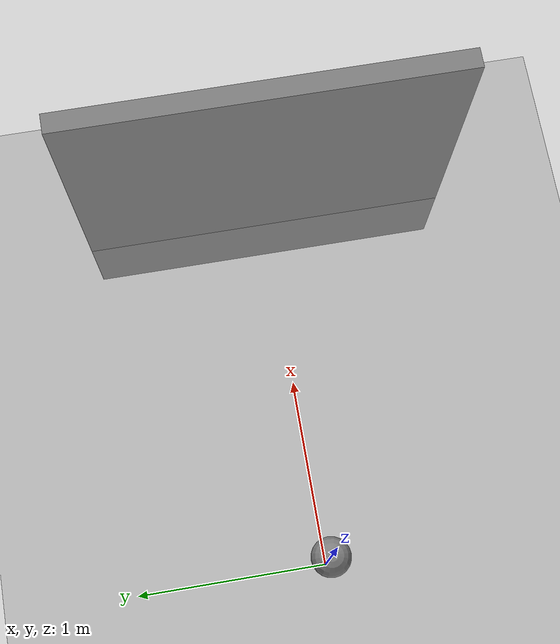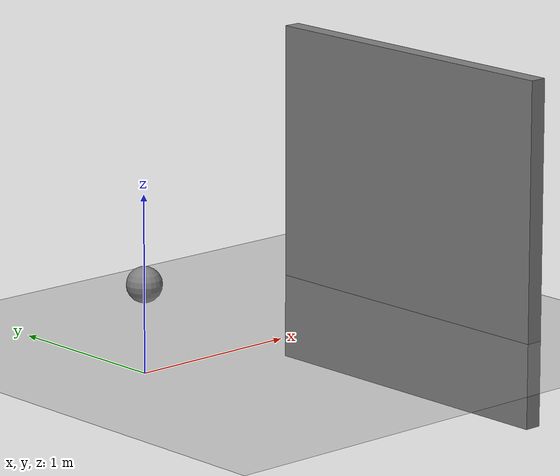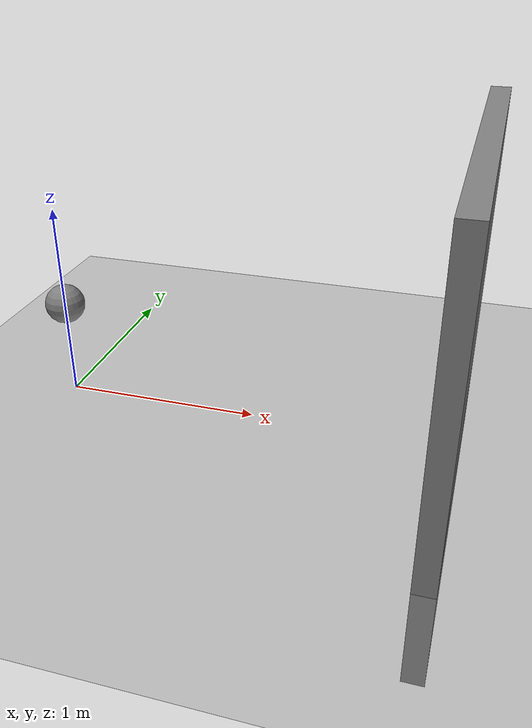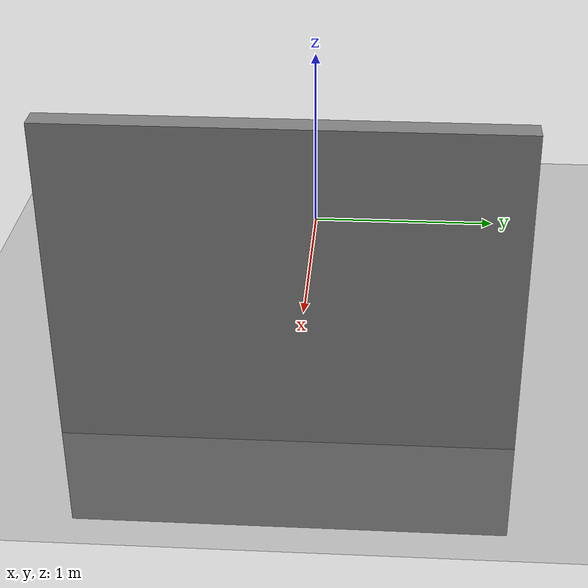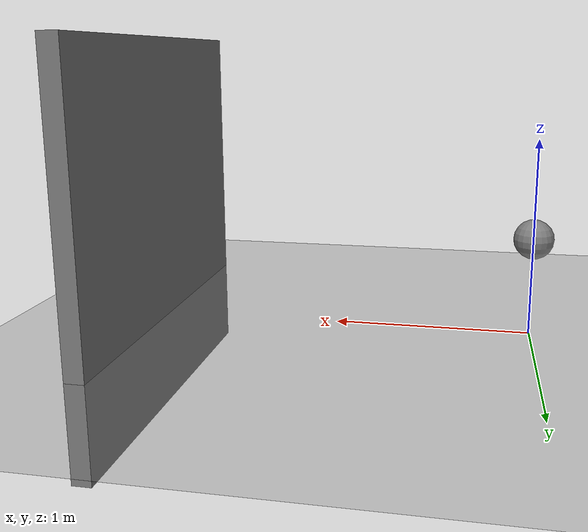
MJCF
<mujoco model="mocap-contact">
  <option gravity="0 0 -9.81" timestep="0.002"/>
  <worldbody>
    <geom type="plane" size="5 5 0.1"/>
    <body name="wall" mocap="true" pos="2 0 0.5">
      <geom type="box" size="0.05 1 1" mass="10.0"/>
    </body>
    <body name="ball" pos="0 0 0.5">
      <freejoint name="ball_free"/>
      <geom type="sphere" size="0.1" mass="1.0"/>
    </body>
  </worldbody>
</mujoco>
